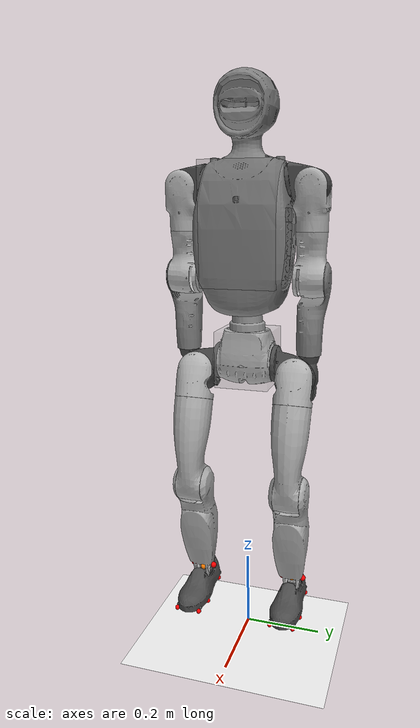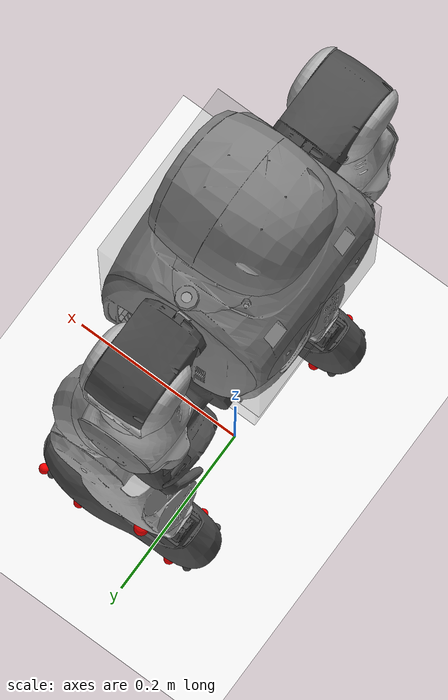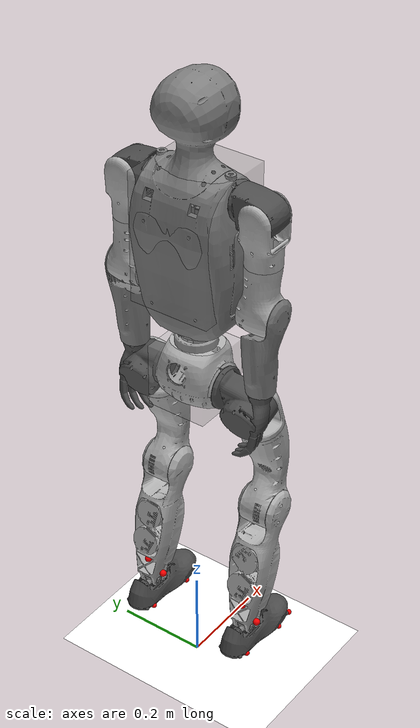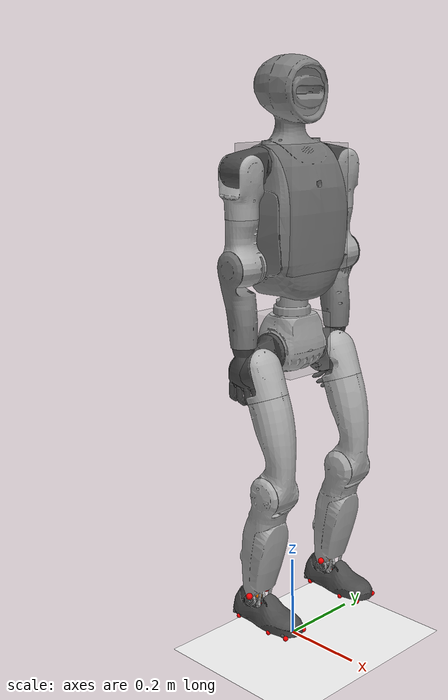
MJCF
<mujoco model="NE01_scene">
  <compiler angle="radian" meshdir="meshes"/>

  <visual>
    <headlight diffuse="0.6 0.6 0.6" ambient="0.1 0.1 0.1" specular="0.9 0.9 0.9"/>
    <rgba haze="0.15 0.25 0.35 1"/>
    <global azimuth="-140" elevation="-20" offwidth="2080" offheight="1170"/>
  </visual>

  <option timestep="0.002" gravity="0 0 -9.81"/>

  <default>
    <joint damping="0.5" armature="0.01" frictionloss="0.1"/>
    <geom contype="1" conaffinity="1" friction="1.0 0.005 0.0001"/>
  </default>

  <asset>
    <texture type="skybox" builtin="gradient" rgb1="1 1 1" rgb2="1 1 1" width="800" height="800"/>
    <texture type="2d" name="groundplane" builtin="checker" mark="edge" rgb1="1 1 1" rgb2="1 1 1" markrgb="0 0 0" width="300" height="300"/>
    <material name="groundplane" texture="groundplane" texuniform="true" texrepeat="5 5" reflectance="0"/>
    <mesh name="base_link" file="base_link.STL"/>
    <mesh name="WAIST_YAW" file="WAIST_YAW.STL"/>
    <mesh name="TORSO_LINK" file="TORSO_LINK.STL"/>
    <mesh name="SHOULDER_PITCH_R" file="SHOULDER_PITCH_R_LINK.STL"/>
    <mesh name="SHOULDER_ROLL_R" file="SHOULDER_ROLL_R_LINK.STL"/>
    <mesh name="SHOULDER_YAW_R" file="SHOULDER_YAW_R_LINK.STL"/>
    <mesh name="ELBOW_PITCH_R" file="ELBOW_PITCH_R_LINK.STL"/>
    <mesh name="HAND_YAW_R" file="HAND_YAW_R_LINK.STL"/>
    <mesh name="SHOULDER_PITCH_L" file="SHOULDER_PITCH_L_LINK.STL"/>
    <mesh name="SHOULDER_ROLL_L" file="SHOULDER_ROLL_L_LINK.STL"/>
    <mesh name="SHOULDER_YAW_L" file="SHOULDER_YAW_L_LINK.STL"/>
    <mesh name="ELBOW_PITCH_L" file="ELBOW_PITCH_L_LINK.STL"/>
    <mesh name="HAND_YAW_L" file="HAND_YAW_L_LINK.STL"/>
    <mesh name="HIP_PITCH_R" file="HIP_PITCH_R_LINK.STL"/>
    <mesh name="HIP_ROLL_R" file="HIP_ROLL_R_LINK.STL"/>
    <mesh name="HIP_YAW_R" file="HIP_YAW_R_LINK.STL"/>
    <mesh name="KNEE_PITCH_R" file="KNEE_PITCH_R_LINK.STL"/>
    <mesh name="ANKLE_PITCH_R" file="ANKLE_PITCH_R_LINK.STL"/>
    <mesh name="ANKLE_ROLL_R" file="ANKLE_ROLL_R_LINK.STL"/>
    <mesh name="HIP_PITCH_L" file="HIP_PITCH_L_LINK.STL"/>
    <mesh name="HIP_ROLL_L" file="HIP_ROLL_L_LINK.STL"/>
    <mesh name="HIP_YAW_L" file="HIP_YAW_L_LINK.STL"/>
    <mesh name="KNEE_PITCH_L" file="KNEE_PITCH_L_LINK.STL"/>
    <mesh name="ANKLE_PITCH_L" file="ANKLE_PITCH_L_LINK.STL"/>
    <mesh name="ANKLE_ROLL_L" file="ANKLE_ROLL_L_LINK.STL"/>
  </asset>

  <worldbody>
    <geom name="floor" size="0 0 0.01" type="plane" material="groundplane" contype="1" conaffinity="0" priority="1" friction="0.6" condim="3"/>
    <light diffuse=".5 .5 .5" pos="-3 -3 5" dir="3 3 -5" castshadow="true"/>

    <body name="base_link" pos="0 0 0.75">
      <inertial pos="-0.001477 -3.65e-06 0.01217" mass="2.7219" diaginertia="0.007081 0.006484 0.005309"/>
      <joint name="floating_base" type="free"/>
      <geom type="mesh" contype="0" conaffinity="0" group="1" density="0" rgba="0.7 0.7 0.7 1" mesh="base_link"/>
      <geom size="0.065 0.067 0.069" pos="-0.005 0 0.0125" type="box" rgba="0.7 0.7 0.7 0.3" contype="0" conaffinity="0"/>

      <!-- Waist: base_link -> WAIST_YAW -> TORSO_LINK -->
      <body name="WAIST_YAW" pos="0 0 0.0485">
        <inertial pos="0.001254 -5.33e-07 0.05838" mass="1.1041" diaginertia="0.001920 0.001920 0.000752"/>
        <joint name="WAIST_YAW_JOINT" pos="0 0 0" axis="0 0 1" range="-2.618 2.618"/>
        <geom type="mesh" contype="0" conaffinity="0" group="1" density="0" rgba="0.6 0.6 0.6 1" mesh="WAIST_YAW"/>

        <body name="TORSO_LINK" pos="0 0 0.103">
          <inertial pos="0.001909 0.001873 0.17711" mass="10.3193" diaginertia="0.16813 0.15606 0.04378"/>
          <joint name="TORSO_ROLL_JOINT" pos="0 0 0" axis="1 0 0" range="-0.5236 0.5236"/>
          <geom type="mesh" contype="0" conaffinity="0" group="1" density="0" rgba="0.5 0.5 0.5 1" mesh="TORSO_LINK"/>
          <geom size="0.09 0.09 0.141" pos="0 0 0.1785" type="box" rgba="0.5 0.5 0.5 0.3" contype="0" conaffinity="0"/>

          <!-- Right Arm (from TORSO_LINK) -->
          <body name="SHOULDER_PITCH_R_LINK" pos="0 -0.0859965 0.2721" quat="0.996195 -0.0871558 0 0">
            <inertial pos="-0.000632 -0.043985 -0.011578" mass="0.99881" diaginertia="0.001655 0.001524 0.000714"/>
            <joint name="SHOULDER_PITCH_R_JOINT" pos="0 0 0" axis="0 1 0" range="-3.0892 2.6704"/>
            <geom type="mesh" contype="0" conaffinity="0" group="1" density="0" rgba="0.3 0.3 0.3 1" mesh="SHOULDER_PITCH_R"/>
            <body name="SHOULDER_ROLL_R_LINK" pos="0 -0.0666201 -0.0191295" quat="0.996195 0.0871558 0 0">
              <inertial pos="0.004936 -0.000210 -0.045512" mass="0.75726" diaginertia="0.001407 0.001273 0.000620"/>
              <joint name="SHOULDER_ROLL_R_JOINT" pos="0 0 0" axis="1 0 0" range="-3.1416 0.01745"/>
              <geom type="mesh" contype="0" conaffinity="0" group="1" density="0" rgba="0.7 0.7 0.7 1" mesh="SHOULDER_ROLL_R"/>
              <body name="SHOULDER_YAW_R_LINK" pos="0 0 -0.1">
                <inertial pos="-0.000764 -0.002137 -0.079608" mass="0.87687" diaginertia="0.002213 0.002218 0.000555"/>
                <joint name="SHOULDER_YAW_R_JOINT" pos="0 0 0" axis="0 0 1" range="-2.618 2.618"/>
                <geom type="mesh" contype="0" conaffinity="0" group="1" density="0" rgba="0.7 0.7 0.7 1" mesh="SHOULDER_YAW_R"/>
                <body name="ELBOW_PITCH_R_LINK" pos="0 0 -0.109171">
                  <inertial pos="-0.002601 -0.009819 -0.089739" mass="0.82874" diaginertia="0.003812 0.003782 0.000625"/>
                  <joint name="ELBOW_PITCH_R_JOINT" pos="0 0 0" axis="0 1 0" range="-2.0944 1.0472"/>
                  <geom type="mesh" contype="0" conaffinity="0" group="1" density="0" rgba="0.5 0.5 0.5 1" mesh="ELBOW_PITCH_R"/>
                  <body name="HAND_YAW_R_LINK" pos="-0.0014 0 -0.178">
                    <inertial pos="0.000837 0.001283 -0.043788" mass="0.33110" diaginertia="0.000845 0.000785 0.000148"/>
                    <joint name="HAND_YAW_R_JOINT" pos="0 0 0" axis="0 0 1" range="-1.527 1.527"/>
                    <geom type="mesh" contype="0" conaffinity="0" group="1" density="0" rgba="0.3 0.3 0.3 1" mesh="HAND_YAW_R"/>
                  </body>
                </body>
              </body>
            </body>
          </body>

          <!-- Left Arm (from TORSO_LINK) -->
          <body name="SHOULDER_PITCH_L_LINK" pos="0 0.0859965 0.2721" quat="0.996195 0.0871558 0 0">
            <inertial pos="-0.000632 0.043985 -0.011578" mass="0.99881" diaginertia="0.001655 0.001524 0.000714"/>
            <joint name="SHOULDER_PITCH_L_JOINT" pos="0 0 0" axis="0 1 0" range="-3.0892 2.6704"/>
            <geom type="mesh" contype="0" conaffinity="0" group="1" density="0" rgba="0.3 0.3 0.3 1" mesh="SHOULDER_PITCH_L"/>
            <body name="SHOULDER_ROLL_L_LINK" pos="0 0.0666201 -0.0191295" quat="0.996195 -0.0871558 0 0">
              <inertial pos="0.004936 0.000210 -0.045512" mass="0.75726" diaginertia="0.001407 0.001273 0.000620"/>
              <joint name="SHOULDER_ROLL_L_JOINT" pos="0 0 0" axis="1 0 0" range="-0.01745 3.1416"/>
              <geom type="mesh" contype="0" conaffinity="0" group="1" density="0" rgba="0.7 0.7 0.7 1" mesh="SHOULDER_ROLL_L"/>
              <body name="SHOULDER_YAW_L_LINK" pos="0 0 -0.1">
                <inertial pos="-0.000764 0.002137 -0.079608" mass="0.87687" diaginertia="0.002213 0.002218 0.000555"/>
                <joint name="SHOULDER_YAW_L_JOINT" pos="0 0 0" axis="0 0 1" range="-2.618 2.618"/>
                <geom type="mesh" contype="0" conaffinity="0" group="1" density="0" rgba="0.7 0.7 0.7 1" mesh="SHOULDER_YAW_L"/>
                <body name="ELBOW_PITCH_L_LINK" pos="0 0 -0.109171">
                  <inertial pos="-0.002601 0.009819 -0.089739" mass="0.82874" diaginertia="0.003812 0.003782 0.000625"/>
                  <joint name="ELBOW_PITCH_L_JOINT" pos="0 0 0" axis="0 1 0" range="-2.0944 1.0472"/>
                  <geom type="mesh" contype="0" conaffinity="0" group="1" density="0" rgba="0.5 0.5 0.5 1" mesh="ELBOW_PITCH_L"/>
                  <body name="HAND_YAW_L_LINK" pos="-0.0014 0 -0.178">
                    <inertial pos="0.000837 -0.001283 -0.043788" mass="0.33110" diaginertia="0.000845 0.000785 0.000148"/>
                    <joint name="HAND_YAW_L_JOINT" pos="0 0 0" axis="0 0 1" range="-1.527 1.527"/>
                    <geom type="mesh" contype="0" conaffinity="0" group="1" density="0" rgba="0.3 0.3 0.3 1" mesh="HAND_YAW_L"/>
                  </body>
                </body>
              </body>
            </body>
          </body>
        </body>
      </body>

      <!-- Right Leg (from base_link directly) -->
      <body name="HIP_PITCH_R_LINK" pos="0 -0.0682 0">
        <inertial pos="0.004738 -0.041369 -0.021168" mass="1.52158" diaginertia="0.002798 0.002276 0.001692"/>
        <joint name="HIP_PITCH_R_JOINT" pos="0 0 0" axis="0 1 0" range="-2.5307 2.8798"/>
        <geom type="mesh" contype="0" conaffinity="0" group="1" density="0" rgba="0.3 0.3 0.3 1" mesh="HIP_PITCH_R"/>
        <body name="HIP_ROLL_R_LINK" pos="0.0235979 -0.0583562 -0.0259965" quat="0.984808 0 -0.173648 0">
          <inertial pos="0.008783 -0.000236 -0.041246" mass="0.97065" diaginertia="0.001916 0.001844 0.000727"/>
          <joint name="HIP_ROLL_R_JOINT" pos="0 0 0" axis="1 0 0" range="-2.9671 0.5236"/>
          <geom type="mesh" contype="0" conaffinity="0" group="1" density="0" rgba="0.7 0.7 0.7 1" mesh="HIP_ROLL_R"/>
          <body name="HIP_YAW_R_LINK" pos="0 0 -0.084395">
            <inertial pos="-0.019976 0.000290 -0.121457" mass="2.88591" diaginertia="0.019285 0.018521 0.004645"/>
            <joint name="HIP_YAW_R_JOINT" pos="0 0 0" axis="0 0 1" range="-2.7576 2.7576"/>
            <geom type="mesh" contype="0" conaffinity="0" group="1" density="0" rgba="0.7 0.7 0.7 1" mesh="HIP_YAW_R"/>
            <site name="ground_guard_right_lower_thigh" type="sphere" pos="-0.064 0 -0.240" size="0.008" rgba="1 0 0 1"/>
            <body name="KNEE_PITCH_R_LINK" pos="-0.0588133 0 -0.2015" quat="0.984813 0 0.173616 0">
              <inertial pos="-0.034275 -0.003411 -0.124592" mass="2.50963" diaginertia="0.017504 0.017238 0.003292"/>
              <joint name="KNEE_PITCH_R_JOINT" pos="0 0 0" axis="0 1 0" range="-0.6592 2.3078"/>
              <geom type="mesh" contype="0" conaffinity="0" group="1" density="0" rgba="0.7 0.7 0.7 1" mesh="KNEE_PITCH_R"/>
              <!-- Contact site is graph-only; red guards are hard constraints. -->
              <site name="ground_contact_right_knee" type="sphere" pos="-0.056 0 -0.282" size="0.008" rgba="1 0.5 0 1"/>
              <site name="ground_guard_right_knee_center" type="sphere" pos="-0.055 0 -0.303" size="0.008" rgba="1 0 0 1"/>
              <site name="ground_guard_right_knee_inner" type="sphere" pos="-0.060 0.028 -0.275" size="0.008" rgba="1 0 0 1"/>
              <site name="ground_guard_right_knee_outer" type="sphere" pos="-0.060 -0.028 -0.275" size="0.008" rgba="1 0 0 1"/>
              <site name="ground_guard_right_upper_shin" type="sphere" pos="-0.075 0 -0.230" size="0.008" rgba="1 0 0 1"/>
              <body name="ANKLE_PITCH_R_LINK" pos="-0.0661134 0 -0.291599">
                <inertial pos="-0.002533 4.05e-05 -0.003287" mass="0.13586" diaginertia="3.137e-05 2.351e-05 1.829e-05"/>
                <joint name="ANKLE_PITCH_R_JOINT" pos="0 0 0" axis="0 1 0" range="-0.667 0.7292"/>
                <geom type="mesh" contype="0" conaffinity="0" group="1" density="0" rgba="0.5 0.5 0.5 1" mesh="ANKLE_PITCH_R"/>
                <body name="ANKLE_ROLL_R_LINK" pos="0 0 -0.008">
                  <inertial pos="0.037484 5.54e-07 -0.023480" mass="0.43467" diaginertia="0.001496 0.001403 0.000227"/>
                  <joint name="ANKLE_ROLL_R_JOINT" pos="0 0 0" axis="1 0 0" range="-0.2618 0.2618"/>
                  <geom type="mesh" contype="0" conaffinity="0" group="1" density="0" rgba="0.3 0.3 0.3 1" mesh="ANKLE_ROLL_R"/>
                  <geom name="right_foot_rear_left_collision" type="sphere" size="0.005" pos="-0.05 0.025 -0.035" rgba="0.3 0.3 0.3 1" priority="1" condim="3"/>
                  <geom name="right_foot_rear_right_collision" type="sphere" size="0.005" pos="-0.05 -0.025 -0.035" rgba="0.3 0.3 0.3 1" priority="1" condim="3"/>
                  <geom name="right_foot_front_left_collision" type="sphere" size="0.005" pos="0.12 0.03 -0.035" rgba="0.3 0.3 0.3 1" priority="1" condim="3"/>
                  <geom name="right_foot_front_right_collision" type="sphere" size="0.005" pos="0.12 -0.03 -0.035" rgba="0.3 0.3 0.3 1" priority="1" condim="3"/>
                  <!-- Visual-shell floor guards sampled from ANKLE_ROLL_R_LINK.STL. -->
                  <site name="ground_contact_right_foot_center" type="sphere" pos="0.035 0 -0.039" size="0.009" rgba="0.2 0.9 0.2 1"/>
                  <site name="ground_guard_right_heel_inner" type="sphere" pos="-0.030 0.029 -0.039" size="0.006" rgba="1 0 0 1"/>
                  <site name="ground_guard_right_heel_outer" type="sphere" pos="-0.030 -0.029 -0.039" size="0.006" rgba="1 0 0 1"/>
                  <site name="ground_guard_right_forefoot_inner" type="sphere" pos="0.080 0.037 -0.039" size="0.006" rgba="1 0 0 1"/>
                  <site name="ground_guard_right_forefoot_outer" type="sphere" pos="0.080 -0.037 -0.039" size="0.006" rgba="1 0 0 1"/>
                  <site name="ground_guard_right_toe_inner" type="sphere" pos="0.130 0.030 -0.039" size="0.006" rgba="1 0 0 1"/>
                  <site name="ground_guard_right_toe_outer" type="sphere" pos="0.130 -0.030 -0.039" size="0.006" rgba="1 0 0 1"/>
                  <body name="right_toe_link" pos="0.1 0 -0.02"/>
                </body>
              </body>
            </body>
          </body>
        </body>
      </body>

      <!-- Left Leg (from base_link directly) -->
      <body name="HIP_PITCH_L_LINK" pos="0 0.0682 0">
        <inertial pos="0.004738 0.041369 -0.021168" mass="1.52158" diaginertia="0.002798 0.002276 0.001692"/>
        <joint name="HIP_PITCH_L_JOINT" pos="0 0 0" axis="0 1 0" range="-2.5307 2.8798"/>
        <geom type="mesh" contype="0" conaffinity="0" group="1" density="0" rgba="0.3 0.3 0.3 1" mesh="HIP_PITCH_L"/>
        <body name="HIP_ROLL_L_LINK" pos="0.0235979 0.0583562 -0.0259965" quat="0.984808 0 -0.173648 0">
          <inertial pos="0.008783 0.000236 -0.041246" mass="0.97065" diaginertia="0.001916 0.001844 0.000727"/>
          <joint name="HIP_ROLL_L_JOINT" pos="0 0 0" axis="1 0 0" range="-0.5236 2.9671"/>
          <geom type="mesh" contype="0" conaffinity="0" group="1" density="0" rgba="0.7 0.7 0.7 1" mesh="HIP_ROLL_L"/>
          <body name="HIP_YAW_L_LINK" pos="0 0 -0.084395">
            <inertial pos="-0.019976 0.000290 -0.121457" mass="2.88591" diaginertia="0.019285 0.018521 0.004645"/>
            <joint name="HIP_YAW_L_JOINT" pos="0 0 0" axis="0 0 1" range="-2.7576 2.7576"/>
            <geom type="mesh" contype="0" conaffinity="0" group="1" density="0" rgba="0.7 0.7 0.7 1" mesh="HIP_YAW_L"/>
            <site name="ground_guard_left_lower_thigh" type="sphere" pos="-0.063 0 -0.240" size="0.008" rgba="1 0 0 1"/>
            <body name="KNEE_PITCH_L_LINK" pos="-0.0588133 0 -0.2015" quat="0.984813 0 0.173616 0">
              <inertial pos="-0.034275 0.003411 -0.124592" mass="2.50963" diaginertia="0.017504 0.017238 0.003292"/>
              <joint name="KNEE_PITCH_L_JOINT" pos="0 0 0" axis="0 1 0" range="-0.6592 2.3078"/>
              <geom type="mesh" contype="0" conaffinity="0" group="1" density="0" rgba="0.7 0.7 0.7 1" mesh="KNEE_PITCH_L"/>
              <!-- Contact site is graph-only; red guards are hard constraints. -->
              <site name="ground_contact_left_knee" type="sphere" pos="-0.055 0 -0.270" size="0.008" rgba="1 0.5 0 1"/>
              <site name="ground_guard_left_knee_center" type="sphere" pos="-0.055 0 -0.303" size="0.008" rgba="1 0 0 1"/>
              <site name="ground_guard_left_knee_inner" type="sphere" pos="-0.060 -0.028 -0.270" size="0.008" rgba="1 0 0 1"/>
              <site name="ground_guard_left_knee_outer" type="sphere" pos="-0.060 0.028 -0.270" size="0.008" rgba="1 0 0 1"/>
              <site name="ground_guard_left_upper_shin" type="sphere" pos="-0.075 0 -0.230" size="0.008" rgba="1 0 0 1"/>
              <body name="ANKLE_PITCH_L_LINK" pos="-0.0661134 0 -0.291599">
                <inertial pos="-0.002533 4.05e-05 -0.003287" mass="0.13586" diaginertia="3.137e-05 2.351e-05 1.829e-05"/>
                <joint name="ANKLE_PITCH_L_JOINT" pos="0 0 0" axis="0 1 0" range="-0.667 0.7292"/>
                <geom type="mesh" contype="0" conaffinity="0" group="1" density="0" rgba="0.5 0.5 0.5 1" mesh="ANKLE_PITCH_L"/>
                <body name="ANKLE_ROLL_L_LINK" pos="0 0 -0.008">
                  <inertial pos="0.037484 5.54e-07 -0.023480" mass="0.43467" diaginertia="0.001496 0.001403 0.000227"/>
                  <joint name="ANKLE_ROLL_L_JOINT" pos="0 0 0" axis="1 0 0" range="-0.2618 0.2618"/>
                  <geom type="mesh" contype="0" conaffinity="0" group="1" density="0" rgba="0.3 0.3 0.3 1" mesh="ANKLE_ROLL_L"/>
                  <geom name="left_foot_rear_left_collision" type="sphere" size="0.005" pos="-0.05 0.025 -0.035" rgba="0.3 0.3 0.3 1" priority="1" condim="3"/>
                  <geom name="left_foot_rear_right_collision" type="sphere" size="0.005" pos="-0.05 -0.025 -0.035" rgba="0.3 0.3 0.3 1" priority="1" condim="3"/>
                  <geom name="left_foot_front_left_collision" type="sphere" size="0.005" pos="0.12 0.03 -0.035" rgba="0.3 0.3 0.3 1" priority="1" condim="3"/>
                  <geom name="left_foot_front_right_collision" type="sphere" size="0.005" pos="0.12 -0.03 -0.035" rgba="0.3 0.3 0.3 1" priority="1" condim="3"/>
                  <!-- Visual-shell floor guards sampled from ANKLE_ROLL_L_LINK.STL. -->
                  <site name="ground_contact_left_foot_center" type="sphere" pos="0.035 0 -0.039" size="0.009" rgba="0.2 0.9 0.2 1"/>
                  <site name="ground_guard_left_heel_inner" type="sphere" pos="-0.030 -0.029 -0.039" size="0.006" rgba="1 0 0 1"/>
                  <site name="ground_guard_left_heel_outer" type="sphere" pos="-0.030 0.029 -0.039" size="0.006" rgba="1 0 0 1"/>
                  <site name="ground_guard_left_forefoot_inner" type="sphere" pos="0.080 -0.037 -0.039" size="0.006" rgba="1 0 0 1"/>
                  <site name="ground_guard_left_forefoot_outer" type="sphere" pos="0.080 0.037 -0.039" size="0.006" rgba="1 0 0 1"/>
                  <site name="ground_guard_left_toe_inner" type="sphere" pos="0.130 -0.030 -0.039" size="0.006" rgba="1 0 0 1"/>
                  <site name="ground_guard_left_toe_outer" type="sphere" pos="0.130 0.030 -0.039" size="0.006" rgba="1 0 0 1"/>
                  <body name="left_toe_link" pos="0.1 0 -0.02"/>
                </body>
              </body>
            </body>
          </body>
        </body>
      </body>
    </body>
  </worldbody>

  <actuator>
    <motor name="WAIST_YAW"        joint="WAIST_YAW_JOINT"        ctrlrange="-150 150"/>
    <motor name="TORSO_ROLL"       joint="TORSO_ROLL_JOINT"       ctrlrange="-150 150"/>
    <motor name="SHOULDER_PITCH_R" joint="SHOULDER_PITCH_R_JOINT"  ctrlrange="-150 150"/>
    <motor name="SHOULDER_ROLL_R"  joint="SHOULDER_ROLL_R_JOINT"   ctrlrange="-150 150"/>
    <motor name="SHOULDER_YAW_R"   joint="SHOULDER_YAW_R_JOINT"   ctrlrange="-150 150"/>
    <motor name="ELBOW_PITCH_R"    joint="ELBOW_PITCH_R_JOINT"    ctrlrange="-150 150"/>
    <motor name="HAND_YAW_R"       joint="HAND_YAW_R_JOINT"       ctrlrange="-150 150"/>
    <motor name="SHOULDER_PITCH_L" joint="SHOULDER_PITCH_L_JOINT"  ctrlrange="-150 150"/>
    <motor name="SHOULDER_ROLL_L"  joint="SHOULDER_ROLL_L_JOINT"   ctrlrange="-150 150"/>
    <motor name="SHOULDER_YAW_L"   joint="SHOULDER_YAW_L_JOINT"   ctrlrange="-150 150"/>
    <motor name="ELBOW_PITCH_L"    joint="ELBOW_PITCH_L_JOINT"    ctrlrange="-150 150"/>
    <motor name="HAND_YAW_L"       joint="HAND_YAW_L_JOINT"       ctrlrange="-150 150"/>
    <motor name="HIP_PITCH_R"      joint="HIP_PITCH_R_JOINT"      ctrlrange="-70 70"/>
    <motor name="HIP_ROLL_R"       joint="HIP_ROLL_R_JOINT"       ctrlrange="-150 150"/>
    <motor name="HIP_YAW_R"        joint="HIP_YAW_R_JOINT"        ctrlrange="-150 150"/>
    <motor name="KNEE_PITCH_R"     joint="KNEE_PITCH_R_JOINT"     ctrlrange="-150 150"/>
    <motor name="ANKLE_PITCH_R"    joint="ANKLE_PITCH_R_JOINT"    ctrlrange="-150 150"/>
    <motor name="ANKLE_ROLL_R"     joint="ANKLE_ROLL_R_JOINT"     ctrlrange="-150 150"/>
    <motor name="HIP_PITCH_L"      joint="HIP_PITCH_L_JOINT"      ctrlrange="-70 70"/>
    <motor name="HIP_ROLL_L"       joint="HIP_ROLL_L_JOINT"       ctrlrange="-150 150"/>
    <motor name="HIP_YAW_L"        joint="HIP_YAW_L_JOINT"        ctrlrange="-150 150"/>
    <motor name="KNEE_PITCH_L"     joint="KNEE_PITCH_L_JOINT"     ctrlrange="-150 150"/>
    <motor name="ANKLE_PITCH_L"    joint="ANKLE_PITCH_L_JOINT"    ctrlrange="-150 150"/>
    <motor name="ANKLE_ROLL_L"     joint="ANKLE_ROLL_L_JOINT"     ctrlrange="-150 150"/>
  </actuator>
</mujoco>
